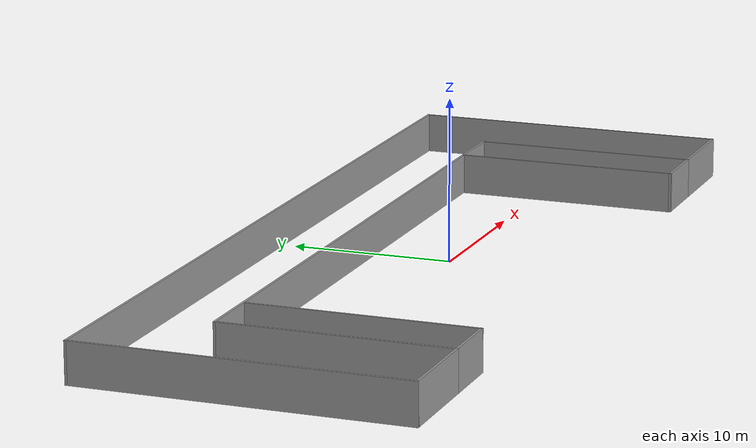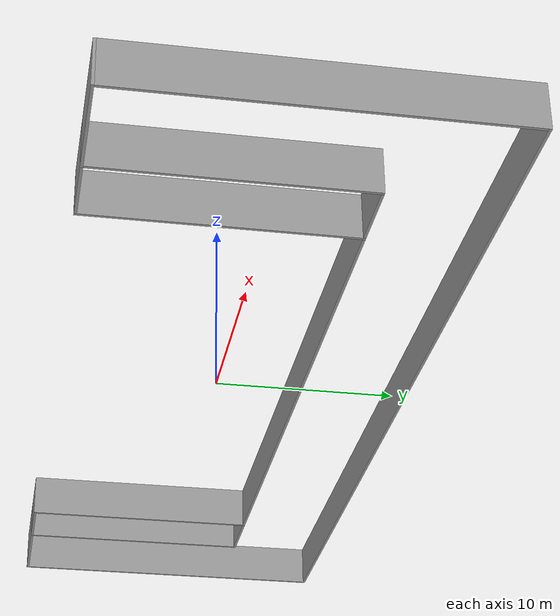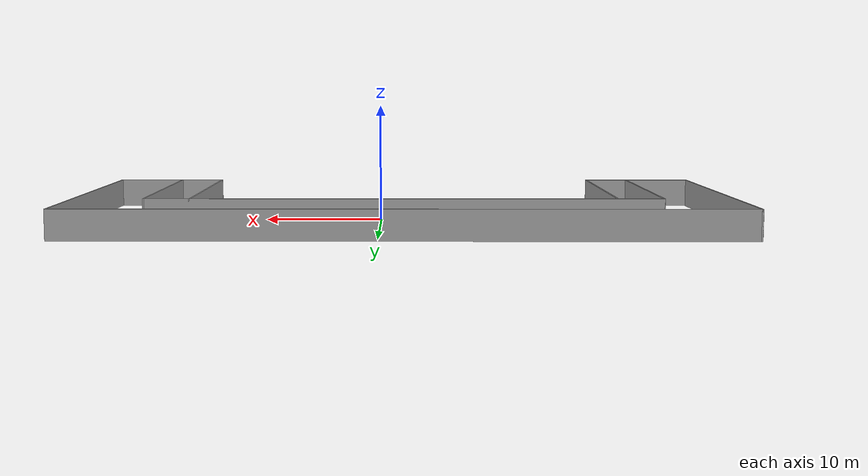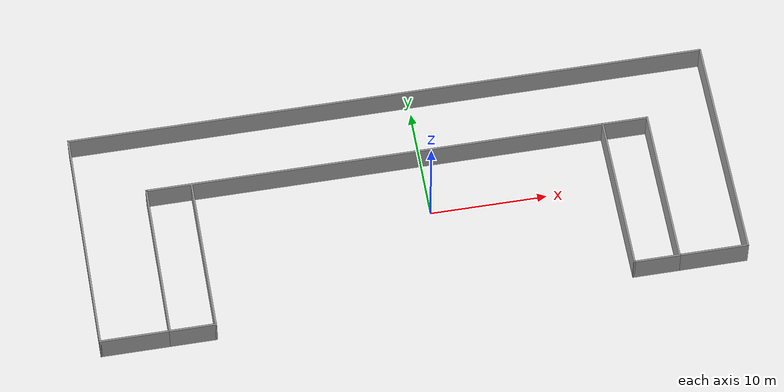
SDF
<?xml version='1.0'?>
<sdf version='1.7'>
  <model name='school_backbone'>
    <pose>-1.99882 0.887598 0 0 -0 0</pose>
    <link name='Wall_11'>
      <collision name='Wall_11_Collision'>
        <geometry>
          <box>
            <size>55 0.15 2.5</size>
          </box>
        </geometry>
        <pose>0 0 1.25 0 -0 0</pose>
      </collision>
      <visual name='Wall_11_Visual'>
        <pose>0 0 1.25 0 -0 0</pose>
        <geometry>
          <box>
            <size>55 0.15 2.5</size>
          </box>
        </geometry>
        <material>
          <script>
            <uri>file://media/materials/scripts/gazebo.material</uri>
            <name>Gazebo/Grey</name>
          </script>
          <ambient>1 1 1 1</ambient>
        </material>
        <meta>
          <layer>0</layer>
        </meta>
      </visual>
      <pose>0 9.925 0 0 -0 0</pose>
    </link>
    <link name='Wall_12'>
      <collision name='Wall_12_Collision'>
        <geometry>
          <box>
            <size>20 0.15 2.5</size>
          </box>
        </geometry>
        <pose>0 0 1.25 0 -0 0</pose>
      </collision>
      <visual name='Wall_12_Visual'>
        <pose>0 0 1.25 0 -0 0</pose>
        <geometry>
          <box>
            <size>20 0.15 2.5</size>
          </box>
        </geometry>
        <material>
          <script>
            <uri>file://media/materials/scripts/gazebo.material</uri>
            <name>Gazebo/Grey</name>
          </script>
          <ambient>1 1 1 1</ambient>
        </material>
        <meta>
          <layer>0</layer>
        </meta>
      </visual>
      <pose>27.425 0 0 0 -0 -1.5708</pose>
    </link>
    <link name='Wall_13'>
      <collision name='Wall_13_Collision'>
        <geometry>
          <box>
            <size>6 0.15 2.5</size>
          </box>
        </geometry>
        <pose>0 0 1.25 0 -0 0</pose>
      </collision>
      <visual name='Wall_13_Visual'>
        <pose>0 0 1.25 0 -0 0</pose>
        <geometry>
          <box>
            <size>6 0.15 2.5</size>
          </box>
        </geometry>
        <material>
          <script>
            <uri>file://media/materials/scripts/gazebo.material</uri>
            <name>Gazebo/Grey</name>
          </script>
          <ambient>1 1 1 1</ambient>
        </material>
        <meta>
          <layer>0</layer>
        </meta>
      </visual>
      <pose>24.5 -9.925 0 0 -0 3.14159</pose>
    </link>
    <link name='Wall_14'>
      <collision name='Wall_14_Collision'>
        <geometry>
          <box>
            <size>14 0.15 2.5</size>
          </box>
        </geometry>
        <pose>0 0 1.25 0 -0 0</pose>
      </collision>
      <visual name='Wall_14_Visual'>
        <pose>0 0 1.25 0 -0 0</pose>
        <geometry>
          <box>
            <size>14 0.15 2.5</size>
          </box>
        </geometry>
        <material>
          <script>
            <uri>file://media/materials/scripts/gazebo.material</uri>
            <name>Gazebo/Grey</name>
          </script>
          <ambient>1 1 1 1</ambient>
        </material>
        <meta>
          <layer>0</layer>
        </meta>
      </visual>
      <pose>21.575 -3 0 0 -0 1.5708</pose>
    </link>
    <link name='Wall_18'>
      <collision name='Wall_18_Collision'>
        <geometry>
          <box>
            <size>43.25 0.15 2.5</size>
          </box>
        </geometry>
        <pose>0 0 1.25 0 -0 0</pose>
      </collision>
      <visual name='Wall_18_Visual'>
        <pose>0 0 1.25 0 -0 0</pose>
        <geometry>
          <box>
            <size>43.25 0.15 2.5</size>
          </box>
        </geometry>
        <material>
          <script>
            <uri>file://media/materials/scripts/gazebo.material</uri>
            <name>Gazebo/Grey</name>
          </script>
          <ambient>1 1 1 1</ambient>
        </material>
        <meta>
          <layer>0</layer>
        </meta>
      </visual>
      <pose>-0.025 3.925 0 0 -0 0</pose>
    </link>
    <link name='Wall_20'>
      <collision name='Wall_20_Collision'>
        <geometry>
          <box>
            <size>4 0.15 2.5</size>
          </box>
        </geometry>
        <pose>0 0 1.25 0 -0 0</pose>
      </collision>
      <visual name='Wall_20_Visual'>
        <pose>0 0 1.25 0 -0 0</pose>
        <geometry>
          <box>
            <size>4 0.15 2.5</size>
          </box>
        </geometry>
        <material>
          <script>
            <uri>file://media/materials/scripts/gazebo.material</uri>
            <name>Gazebo/Grey</name>
          </script>
          <ambient>1 1 1 1</ambient>
        </material>
        <meta>
          <layer>0</layer>
        </meta>
      </visual>
      <pose>-19.65 -9.925 0 0 -0 0</pose>
    </link>
    <link name='Wall_23'>
      <collision name='Wall_23_Collision'>
        <geometry>
          <box>
            <size>4 0.15 2.5</size>
          </box>
        </geometry>
        <pose>0 0 1.25 0 -0 0</pose>
      </collision>
      <visual name='Wall_23_Visual'>
        <pose>0 0 1.25 0 -0 0</pose>
        <geometry>
          <box>
            <size>4 0.15 2.5</size>
          </box>
        </geometry>
        <material>
          <script>
            <uri>file://media/materials/scripts/gazebo.material</uri>
            <name>Gazebo/Grey</name>
          </script>
          <ambient>1 1 1 1</ambient>
        </material>
        <meta>
          <layer>0</layer>
        </meta>
      </visual>
      <pose>19.65 -9.925 0 0 -0 3.14159</pose>
    </link>
    <link name='Wall_24'>
      <collision name='Wall_24_Collision'>
        <geometry>
          <box>
            <size>14 0.15 2.5</size>
          </box>
        </geometry>
        <pose>0 0 1.25 0 -0 0</pose>
      </collision>
      <visual name='Wall_24_Visual'>
        <pose>0 0 1.25 0 -0 0</pose>
        <geometry>
          <box>
            <size>14 0.15 2.5</size>
          </box>
        </geometry>
        <material>
          <script>
            <uri>file://media/materials/scripts/gazebo.material</uri>
            <name>Gazebo/Grey</name>
          </script>
          <ambient>1 1 1 1</ambient>
        </material>
        <meta>
          <layer>0</layer>
        </meta>
      </visual>
      <pose>17.725 -3 0 0 -0 1.5708</pose>
    </link>
    <link name='Wall_26'>
      <collision name='Wall_26_Collision'>
        <geometry>
          <box>
            <size>14 0.15 2.5</size>
          </box>
        </geometry>
        <pose>0 0 1.25 0 -0 0</pose>
      </collision>
      <visual name='Wall_26_Visual'>
        <pose>0 0 1.25 0 -0 0</pose>
        <geometry>
          <box>
            <size>14 0.15 2.5</size>
          </box>
        </geometry>
        <material>
          <script>
            <uri>file://media/materials/scripts/gazebo.material</uri>
            <name>Gazebo/Grey</name>
          </script>
          <ambient>1 1 1 1</ambient>
        </material>
        <meta>
          <layer>0</layer>
        </meta>
      </visual>
      <pose>-17.725 -3 0 0 -0 1.5708</pose>
    </link>
    <link name='Wall_28'>
      <collision name='Wall_28_Collision'>
        <geometry>
          <box>
            <size>14 0.15 2.5</size>
          </box>
        </geometry>
        <pose>0 0 1.25 0 -0 0</pose>
      </collision>
      <visual name='Wall_28_Visual'>
        <pose>0 0 1.25 0 -0 0</pose>
        <geometry>
          <box>
            <size>14 0.15 2.5</size>
          </box>
        </geometry>
        <material>
          <script>
            <uri>file://media/materials/scripts/gazebo.material</uri>
            <name>Gazebo/Grey</name>
          </script>
          <ambient>1 1 1 1</ambient>
        </material>
        <meta>
          <layer>0</layer>
        </meta>
      </visual>
      <pose>-21.575 -3 0 0 -0 -1.5708</pose>
    </link>
    <link name='Wall_7'>
      <collision name='Wall_7_Collision'>
        <geometry>
          <box>
            <size>20 0.15 2.5</size>
          </box>
        </geometry>
        <pose>0 0 1.25 0 -0 0</pose>
      </collision>
      <visual name='Wall_7_Visual'>
        <pose>0 0 1.25 0 -0 0</pose>
        <geometry>
          <box>
            <size>20 0.15 2.5</size>
          </box>
        </geometry>
        <material>
          <script>
            <uri>file://media/materials/scripts/gazebo.material</uri>
            <name>Gazebo/Grey</name>
          </script>
          <ambient>1 1 1 1</ambient>
        </material>
        <meta>
          <layer>0</layer>
        </meta>
      </visual>
      <pose>-27.425 0 0 0 -0 -1.5708</pose>
    </link>
    <link name='Wall_8'>
      <collision name='Wall_8_Collision'>
        <geometry>
          <box>
            <size>6 0.15 2.5</size>
          </box>
        </geometry>
        <pose>0 0 1.25 0 -0 0</pose>
      </collision>
      <visual name='Wall_8_Visual'>
        <pose>0 0 1.25 0 -0 0</pose>
        <geometry>
          <box>
            <size>6 0.15 2.5</size>
          </box>
        </geometry>
        <material>
          <script>
            <uri>file://media/materials/scripts/gazebo.material</uri>
            <name>Gazebo/Grey</name>
          </script>
          <ambient>1 1 1 1</ambient>
        </material>
        <meta>
          <layer>0</layer>
        </meta>
      </visual>
      <pose>-24.5 -9.925 0 0 -0 0</pose>
    </link>
    <static>1</static>
  </model>
</sdf>
